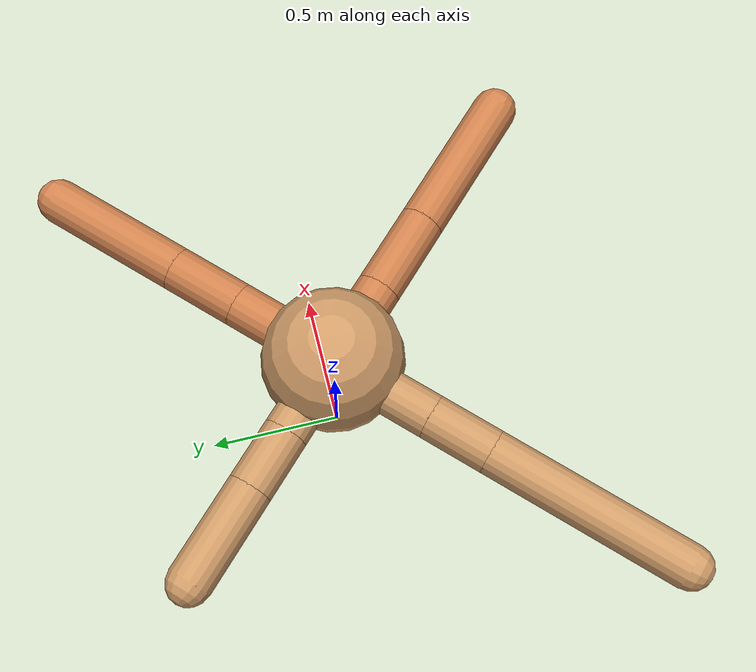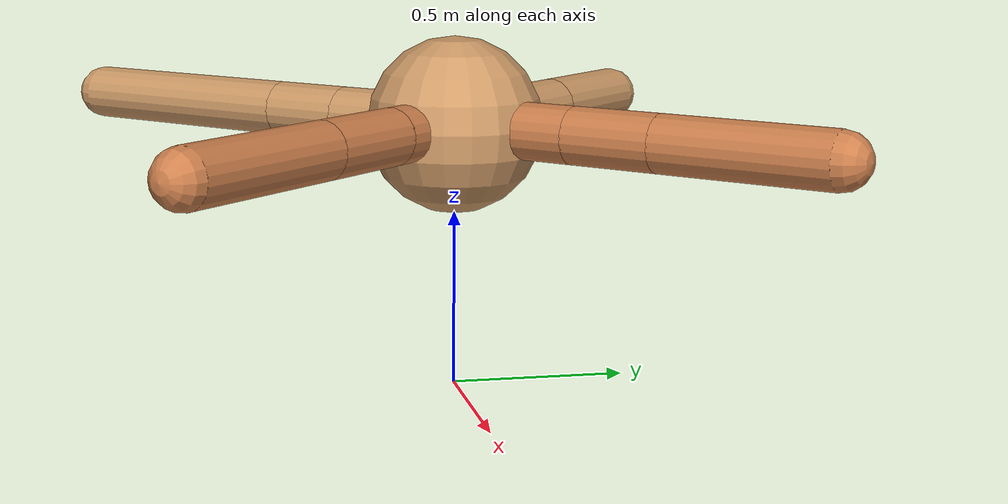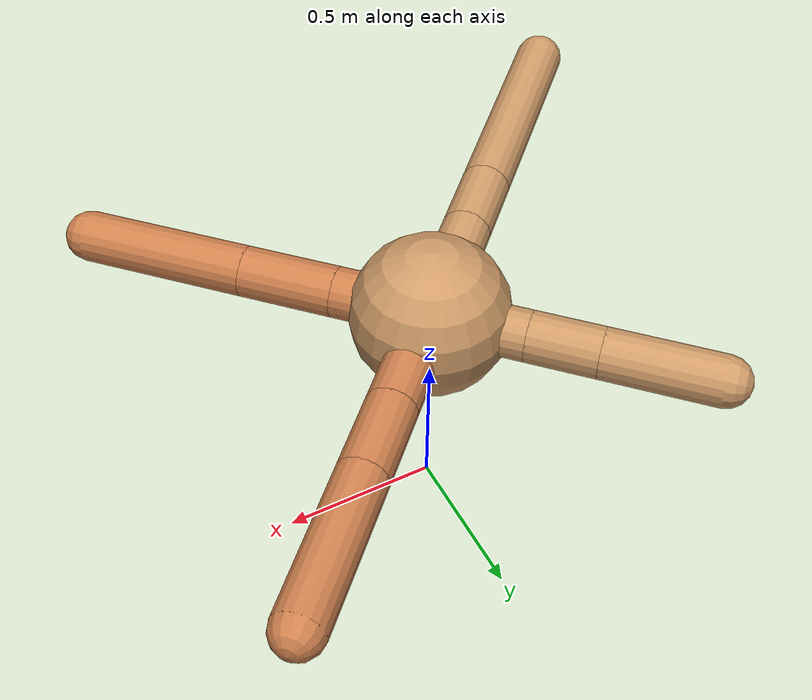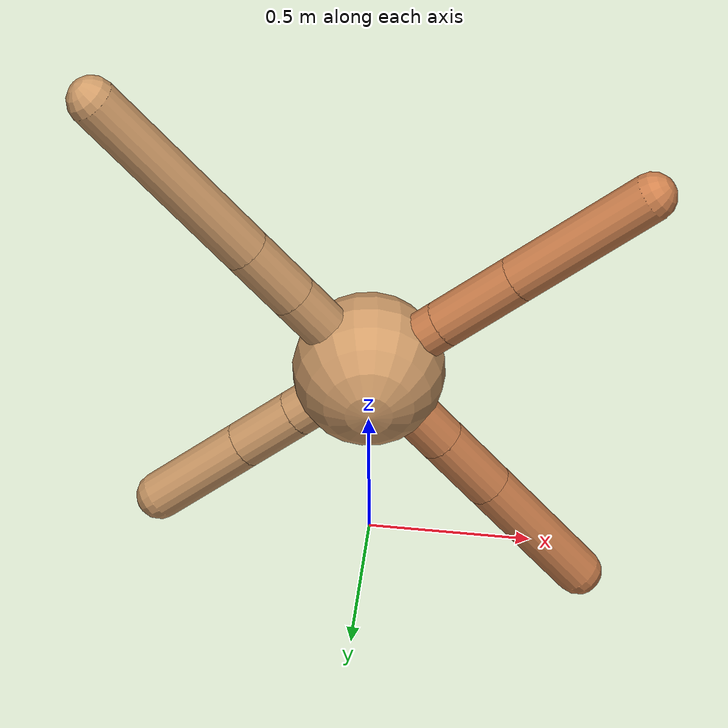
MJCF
<mujoco model="ant">
  <compiler angle="degree" coordinate="local" inertiafromgeom="true" />
  <option integrator="RK4" timestep="0.01" />
  <custom>
    <numeric data="0.0 0.0 0.55 1.0 0.0 0.0 0.0 0.0 1.0 0.0 -1.0 0.0 -1.0 0.0 1.0" name="init_qpos" />
  </custom>
  <default>
    <joint armature="1" damping="1" limited="true" />
    <geom conaffinity="0" condim="3" density="5.0" friction="1.5 0.1 0.1" margin="0.01" rgba="0.8 0.6 0.4 1" />
  </default>
  <worldbody>
    <body name="torso" pos="0 0 0.75">
      <geom name="torso_geom" pos="0 0 0" size="0.25" type="sphere" />

      <body name="front_left_leg" pos="0 0 0">
        <geom fromto="0.0 0.0 0.0 0.2730894401105914 0.2730894401105914 0.0" name="aux_1_geom" size="0.08" type="capsule" rgba=".8 .5 .3 1" />
        <body name="aux_1" pos="0.2730894401105914 0.2730894401105914 0.0">
          <joint axis="0 0 1" name="hip_1" pos="0.0 0.0 0.0" range="-40 40" type="hinge" />
          <geom fromto="0.0 0.0 0.0 0.1826736549818495 0.1826736549818495 0.0" name="left_leg_geom" size="0.08" type="capsule" rgba=".8 .5 .3 1" />
          <body pos="0.1826736549818495 0.1826736549818495 0.0" name="front_left_foot">
            <joint axis="-1 1 0" name="ankle_1" pos="0.0 0.0 0.0" range="30 100" type="hinge" />
            <geom fromto="0.0 0.0 0.0 0.35595486863574877 0.35595486863574877 0.0" name="left_ankle_geom" size="0.08" type="capsule" rgba=".8 .5 .3 1" />
          </body>
        </body>
      </body>
      <body name="front_right_leg" pos="0 0 0">
        <geom fromto="0.0 0.0 0.0 -0.21471819497728195 0.21471819497728195 0.0" name="aux_2_geom" size="0.08" type="capsule" />
        <body name="aux_2" pos="-0.21471819497728195 0.21471819497728195 0.0">
          <joint axis="0 0 1" name="hip_2" pos="0.0 0.0 0.0" range="-40 40" type="hinge" />
          <geom fromto="0.0 0.0 0.0 -0.15630863455823626 0.15630863455823626 0.0" name="right_leg_geom" size="0.08" type="capsule" />
          <body pos="-0.15630863455823626 0.15630863455823626 0.0" name="front_right_foot">
            <joint axis="1 1 0" name="ankle_2" pos="0.0 0.0 0.0" range="-100 -30" type="hinge" />
            <geom fromto="0.0 0.0 0.0 -0.25742555403438366 0.25742555403438366 0.0" name="right_ankle_geom" size="0.08" type="capsule" />
          </body>
        </body>
      </body>
      <body name="left_back_leg" pos="0 0 0">
        <geom fromto="0.0 0.0 0.0 -0.2759097340957674 -0.2759097340957674 0.0" name="aux_3_geom" size="0.08" type="capsule" />
        <body name="aux_3" pos="-0.2759097340957674 -0.2759097340957674 0.0">
          <joint axis="0 0 1" name="hip_3" pos="0.0 0.0 0.0" range="-40 40" type="hinge" />
          <geom fromto="0.0 0.0 0.0 -0.1653418840728521 -0.1653418840728521 0.0" name="back_leg_geom" size="0.08" type="capsule" />
          <body pos="-0.1653418840728521 -0.1653418840728521 0.0" name="left_back_foot">
            <joint axis="-1 1 0" name="ankle_3" pos="0.0 0.0 0.0" range="-100 -30" type="hinge" />
            <geom fromto="0.0 0.0 0.0 -0.5231024867413486 -0.5231024867413486 0.0" name="third_ankle_geom" size="0.08" type="capsule" />
          </body>
        </body>
      </body>
      <body name="right_back_leg" pos="0 0 0">
        <geom fromto="0.0 0.0 0.0 0.21440710865273296 -0.21440710865273296 0.0" name="aux_4_geom" size="0.08" type="capsule" rgba=".8 .5 .3 1" />
        <body name="aux_4" pos="0.21440710865273296 -0.21440710865273296 0.0">
          <joint axis="0 0 1" name="hip_4" pos="0.0 0.0 0.0" range="-40 40" type="hinge" />
          <geom fromto="0.0 0.0 0.0 0.21020362763631098 -0.21020362763631098 0.0" name="rightback_leg_geom" size="0.08" type="capsule" rgba=".8 .5 .3 1" />
          <body pos="0.21020362763631098 -0.21020362763631098 0.0" name="right_back_foot">
            <joint axis="1 1 0" name="ankle_4" pos="0.0 0.0 0.0" range="30 100" type="hinge" />
            <geom fromto="0.0 0.0 0.0 0.3726415183679973 -0.3726415183679973 0.0" name="fourth_ankle_geom" size="0.08" type="capsule" rgba=".8 .5 .3 1" />
          </body>
        </body>
      </body>
    </body>
  </worldbody>
  <actuator>
    <motor ctrllimited="true" ctrlrange="-1.0 1.0" joint="hip_4" gear="150" />
    <motor ctrllimited="true" ctrlrange="-1.0 1.0" joint="ankle_4" gear="150" />
    <motor ctrllimited="true" ctrlrange="-1.0 1.0" joint="hip_1" gear="150" />
    <motor ctrllimited="true" ctrlrange="-1.0 1.0" joint="ankle_1" gear="150" />
    <motor ctrllimited="true" ctrlrange="-1.0 1.0" joint="hip_2" gear="150" />
    <motor ctrllimited="true" ctrlrange="-1.0 1.0" joint="ankle_2" gear="150" />
    <motor ctrllimited="true" ctrlrange="-1.0 1.0" joint="hip_3" gear="150" />
    <motor ctrllimited="true" ctrlrange="-1.0 1.0" joint="ankle_3" gear="150" />
  </actuator>
</mujoco>
